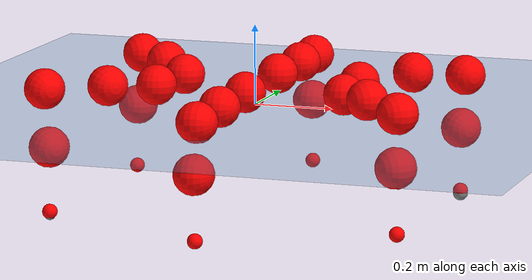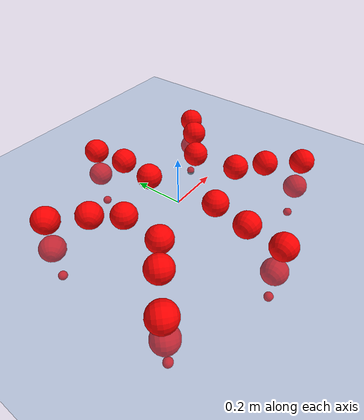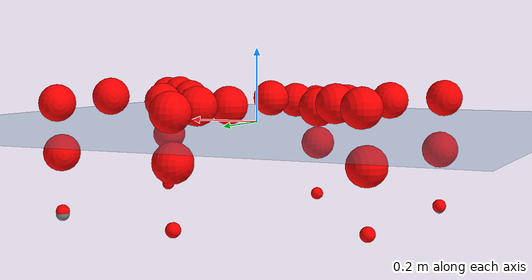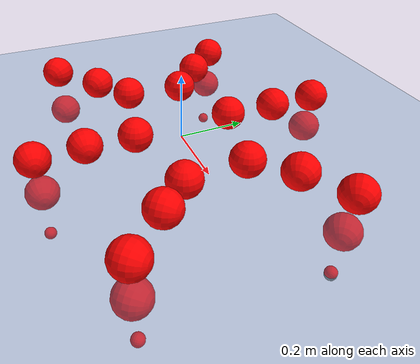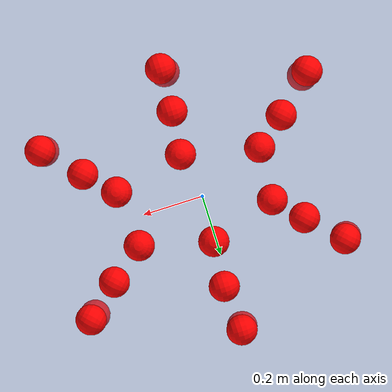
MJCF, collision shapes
<mujoco model="Golem">
  <compiler angle="radian" assetdir="assets" balanceinertia="true" inertiafromgeom="false"/>

  <option timestep="0.005" density="1.2" viscosity="2e-05"/>

  <size nkey="1"/>

  <visual>
    <quality shadowsize="8192"/>
    <map shadowclip="0.5"/>
  </visual>

  <default>
    <default class="/">
      <joint armature="0.01" damping="0.01" frictionloss="0.01"/>
      <geom contype="0" conaffinity="0" group="1" solref="-1000 -80"/>
      <site size="0.01 0.005 0.005" group="5"/>
      <general forcelimited="true" biastype="affine" gainprm="25" biasprm="0 -25 -0.5"/>
      <default class="visual">
        <geom type="mesh" group="2"/>
      </default>
      <default class="collision">
        <geom group="3"/>
      </default>
      <default class="foot">
        <geom size="0.01 0 0" condim="6" group="4" priority="1" solimp="0.015 1 0.01"/>
      </default>
      <default class="reward_collision_sphere">
        <geom group="5" rgba="1 0 0 1"/>
      </default>
    </default>
  </default>

  <asset>
    <texture type="skybox" colorspace="auto" name="//unnamed_texture_0" builtin="gradient" rgb1="0.95 0.95 0.95" rgb2="0.95 0.95 0.95" width="100" height="600"/>
    <texture type="2d" colorspace="auto" name="texplane" builtin="checker" rgb1="0.345 0.575 0.748" rgb2="0.345 0.575 0.748" markrgb="1 1 1" width="512" height="512"/>
    <material name="MatPlane" class="/" texture="texplane" texuniform="true" texrepeat="2 2" specular="0.9"/>
    <mesh name="body" class="/" file="body.stl" scale="0.001 0.001 0.001"/>
    <mesh name="coxa" class="/" file="coxa.stl" scale="0.001 0.001 0.001"/>
    <mesh name="femur" class="/" file="femur.stl" scale="0.001 0.001 0.001"/>
    <mesh name="tibia" class="/" file="tibia.stl" scale="0.001 0.001 0.001"/>
    <mesh name="tarsus" class="/" file="tarsus.stl" scale="0.001 0.001 0.001"/>
  </asset>

  <worldbody>
    <geom name="floor" class="/" size="100 100 0.125" type="plane" group="0" material="MatPlane"/>
    <light name="toplight_shadow" class="/" pos="0 0 5" dir="0.0990148 0.0990148 -0.990148" type="directional" ambient="0.04 0.04 0.04" diffuse="0.55 0.55 0.55" specular="0.12 0.12 0.12"/>
    <light name="toplight_fill" class="/" pos="0 0 5" dir="0.0990148 0.0990148 -0.990148" type="directional" castshadow="false" ambient="0.04 0.04 0.04" diffuse="0.3 0.3 0.3" specular="0.08 0.08 0.08"/>
    <body name="trunk" pos="0.0121937 -0.000368829 -0.00210706" quat="0.99997 -0.00750491 -0.000381088 -0.00210484">
      <inertial pos="0.00491711 -0.0167773 -0.0154556" quat="0.998756 -0.0262281 0.041291 -0.00968937" mass="7.9841" diaginertia="0.0822123 0.0448641 0.00742237"/>
      <joint name="//unnamed_joint_0" type="free"/>
      <geom name="//unnamed_geom_1" class="/" pos="0 0 0.0591761" quat="1 0 0 0" type="mesh" rgba="0.9 0.9 0.9 1" mesh="body"/>
      <site name="imu" class="/" pos="0.198739 -0.0682891 0.139133" size="0.0126404"/>
      <camera name="track" class="/" pos="0 -2.74728 0" quat="0.707107 0.707107 0 0" mode="trackcom"/>
      <camera name="ego_camera" class="/" pos="0.194202 0 0.0924626" quat="-0.5 -0.5 0.5 0.5"/>
      <body name="coxa_RR" pos="-0.268323 -0.127942 0.0532562" quat="0.389192 0.000611608 0.000461518 -0.921156">
        <inertial pos="-0.0110485 -0.00846547 -0.00888691" quat="0.996387 -0.0403416 0.0393914 0.0635117" mass="0.262073" diaginertia="0.0602067 0.0361395 0.00596282"/>
        <joint name="coxa_joint_RR" class="/" pos="0 0 0" axis="-0.00045853 0.00192813 -0.999998" range="-3.15545 3.47645" armature="0.00217515" damping="0" frictionloss="0.0125287"/>
        <geom name="//unnamed_geom_2" class="/" type="mesh" rgba="0.2 0.2 0.2 1" mesh="coxa"/>
        <geom name="//unnamed_geom_3" class="reward_collision_sphere" size="0.0505617" pos="-0.0448159 0 0"/>
        <body name="femur_RR" pos="0.0802091 -0.0145136 0.00460448" quat="0.501049 -0.501181 0.495438 0.502304">
          <inertial pos="-0.0150414 -0.0083239 0.00112971" quat="0.99734 -0.0278536 -0.0410308 0.0534144" mass="0.421541" diaginertia="0.0764394 0.050483 0.00668612"/>
          <joint name="femur_joint_RR" class="/" pos="0 0 0" axis="-0.000914295 -0.00217834 -0.999997" range="-3.34494 3.35507" armature="0.0119113" damping="0.0798163" frictionloss="0.00741087"/>
          <geom name="//unnamed_geom_4" class="/" type="mesh" rgba="0.9 0.9 0.9 1" mesh="femur"/>
          <geom name="//unnamed_geom_5" class="reward_collision_sphere" size="0.0505617"/>
          <body name="tibia_RR" pos="-0.00217306 -0.164339 -0.0107779" quat="-0.00319589 0.999988 -0.00303465 -0.00206681">
            <inertial pos="0.0124522 -0.00305302 -0.00239888" quat="0.999112 0.0387074 0.000694984 -0.016601" mass="0.315333" diaginertia="0.0662029 0.05007 0.00563001"/>
            <joint name="tibia_joint_RR" class="/" pos="0 0 0" axis="0.0598642 0.0307657 0.997732" range="-2.97984 3.16225" armature="0.0135172" damping="0.0192002" frictionloss="0.0119459"/>
            <geom name="//unnamed_geom_6" class="/" type="mesh" rgba="0.2 0.2 0.2 1" mesh="tibia"/>
            <geom name="//unnamed_geom_7" class="reward_collision_sphere" size="0.0505617"/>
            <body name="tarsus_RR" pos="0.144816 -0.0116584 -0.00208019" quat="0.999986 0.00179511 0.00316295 -0.00381953">
              <inertial pos="0.0897775 0.00431822 0.00843955" quat="0.500211 0.498749 0.501496 0.49954" mass="0.32887" diaginertia="0.0638149 0.0408339 0.00533834"/>
              <joint name="tarsus_joint_RR" class="/" pos="0 0 0" axis="0.00755123 -0.0223424 0.999722" range="-3.15571 3.13201" armature="0.0104784" damping="0.0111139" frictionloss="0.0208966"/>
              <geom name="//unnamed_geom_8" class="/" type="mesh" rgba="0.9 0.9 0.9 1" mesh="tarsus"/>
              <geom name="foot_1" class="foot" size="0.0143836" pos="0.167313 0 0" quat="0 -0.707107 0 0.707107"/>
              <geom name="//unnamed_geom_10" class="reward_collision_sphere" size="0.0505617"/>
              <geom name="//unnamed_geom_11" class="reward_collision_sphere" size="0.0189607" pos="0.16059 0 0"/>
              <site name="foot_1" class="foot" pos="0.167313 0 0" quat="0 -0.707107 0 0.707107" size="0.0126404"/>
            </body>
          </body>
        </body>
      </body>
      <body name="coxa_RM" pos="0.0150403 -0.195646 0.0584906" quat="0.708632 -0.0028541 -0.000628183 -0.705572">
        <inertial pos="0.0146462 -0.00201512 0.00528496" quat="0.999984 -0.000103509 -0.000470026 0.00565239" mass="0.329037" diaginertia="0.0671536 0.035111 0.00538722"/>
        <joint name="coxa_joint_RM" class="/" pos="0 0 0" axis="0.000964669 0.00127138 -0.999999" range="-3.39793 3.13801" armature="0.00444845" damping="0.000338823" frictionloss="0.0132568"/>
        <geom name="//unnamed_geom_12" class="/" type="mesh" rgba="0.2 0.2 0.2 1" mesh="coxa"/>
        <geom name="//unnamed_geom_13" class="reward_collision_sphere" size="0.0505617" pos="-0.0448159 0 0"/>
        <body name="femur_RM" pos="0.0970833 -0.0162424 -0.0143026" quat="0.500867 -0.498519 0.496974 0.503615">
          <inertial pos="-0.00336582 0.00996973 -0.00778784" quat="0.996702 -0.0219157 0.0330705 0.0707906" mass="0.435277" diaginertia="0.100247 0.057924 0.00876042"/>
          <joint name="femur_joint_RM" class="/" pos="0 0 0" axis="-0.00232165 -0.00757958 -0.999969" range="-2.80865 3.26367" armature="0.0115796" damping="0" frictionloss="0.012712"/>
          <geom name="//unnamed_geom_14" class="/" type="mesh" rgba="0.9 0.9 0.9 1" mesh="femur"/>
          <geom name="//unnamed_geom_15" class="reward_collision_sphere" size="0.0505617"/>
          <body name="tibia_RM" pos="0.0142125 -0.143317 -0.00657473" quat="-0.000655672 0.999965 0.00392659 0.00737354">
            <inertial pos="0.0118439 0.000322422 0.00603274" quat="0.998007 0.0310305 -0.0370122 -0.0406" mass="0.398597" diaginertia="0.0788144 0.0601244 0.00848617"/>
            <joint name="tibia_joint_RM" class="/" pos="0 0 0" axis="0.0306523 -0.0111085 0.999468" stiffness="0.0748043" range="-3.12514 3.14726" armature="0.0150957" damping="0.0612861" frictionloss="0.0164627"/>
            <geom name="//unnamed_geom_16" class="/" type="mesh" rgba="0.2 0.2 0.2 1" mesh="tibia"/>
            <geom name="//unnamed_geom_17" class="reward_collision_sphere" size="0.0505617"/>
            <body name="tarsus_RM" pos="0.127618 -0.00705524 0.0127059" quat="0.999973 0.0041447 -0.000223777 0.00606076">
              <inertial pos="0.0889892 -0.00437845 -1.74385e-06" quat="0.498869 0.498971 0.52628 0.474539" mass="0.407689" diaginertia="0.0723156 0.0494187 0.00528069"/>
              <joint name="tarsus_joint_RM" class="/" pos="0 0 0" axis="-0.00615583 -0.0692376 0.997581" range="-2.90399 2.80488" armature="0.0195394" damping="0.00884756" frictionloss="0.0231916"/>
              <geom name="//unnamed_geom_18" class="/" type="mesh" rgba="0.9 0.9 0.9 1" mesh="tarsus"/>
              <geom name="foot_2" class="foot" size="0.00952748" pos="0.167313 0 0" quat="0 -0.707107 0 0.707107"/>
              <geom name="//unnamed_geom_20" class="reward_collision_sphere" size="0.0505617"/>
              <geom name="//unnamed_geom_21" class="reward_collision_sphere" size="0.0189607" pos="0.16059 0 0"/>
              <site name="foot_2" class="foot" pos="0.167313 0 0" quat="0 -0.707107 0 0.707107" size="0.0126404"/>
            </body>
          </body>
        </body>
      </body>
      <body name="coxa_RF" pos="0.280611 -0.127493 0.0576688" quat="0.924257 0.00658823 -0.0029311 -0.381703">
        <inertial pos="-0.0149887 -0.0152873 -0.00131193" quat="0.999971 -0.00544031 -0.00531718 0.000195253" mass="0.382911" diaginertia="0.079758 0.0557284 0.00668934"/>
        <joint name="coxa_joint_RF" class="/" pos="0 0 0" axis="-0.04211 -0.00592542 -0.999095" stiffness="0.082753" range="-3.32027 3.44613" armature="0.017928" damping="0" frictionloss="0.0103116"/>
        <geom name="//unnamed_geom_22" class="/" type="mesh" rgba="0.2 0.2 0.2 1" mesh="coxa"/>
        <geom name="//unnamed_geom_23" class="reward_collision_sphere" size="0.0505617" pos="-0.0448159 0 0"/>
        <body name="femur_RF" pos="0.078385 -0.000898593 0.00669535" quat="0.495364 -0.497909 0.502159 0.504517">
          <inertial pos="0.000712904 0.0103354 -0.0162023" quat="0.997596 -0.011859 -0.0663657 -0.016009" mass="0.417672" diaginertia="0.0885987 0.0590958 0.00966309"/>
          <joint name="femur_joint_RF" class="/" pos="0 0 0" axis="0.0499644 -0.0656339 -0.996592" range="-3.07646 3.34236" armature="0.00128562" damping="0.000888714" frictionloss="0.00465702"/>
          <geom name="//unnamed_geom_24" class="/" type="mesh" rgba="0.9 0.9 0.9 1" mesh="femur"/>
          <geom name="//unnamed_geom_25" class="reward_collision_sphere" size="0.0505617"/>
          <body name="tibia_RF" pos="0.00553683 -0.157746 -0.00373108" quat="-0.00327635 0.999988 -0.00147861 0.0032575">
            <inertial pos="-0.000635823 0.000548299 0.000999572" quat="0.997906 -0.0611322 0.00316992 -0.0208762" mass="0.498257" diaginertia="0.0817259 0.0560968 0.00618429"/>
            <joint name="tibia_joint_RF" class="/" pos="0 0 0" axis="-0.0163178 0.0190905 0.999685" stiffness="0.0527759" range="-3.15659 2.8328" armature="0.0100615" damping="0.0132736" frictionloss="0.00798312"/>
            <geom name="//unnamed_geom_26" class="/" type="mesh" rgba="0.2 0.2 0.2 1" mesh="tibia"/>
            <geom name="//unnamed_geom_27" class="reward_collision_sphere" size="0.0505617"/>
            <body name="tarsus_RF" pos="0.130975 -0.00159744 0.00430541" quat="0.999966 0.00376021 0.00698104 0.00205532">
              <inertial pos="0.0963347 -0.000412805 -0.000321504" quat="0.477235 0.538172 0.512784 0.46869" mass="0.462002" diaginertia="0.0840941 0.0570933 0.00904976"/>
              <joint name="tarsus_joint_RF" class="/" pos="0 0 0" axis="-0.0327502 0.00907384 0.999422" range="-3.15255 3.18475" armature="0.0132089" damping="0" frictionloss="0.00584901"/>
              <geom name="//unnamed_geom_28" class="/" type="mesh" rgba="0.9 0.9 0.9 1" mesh="tarsus"/>
              <geom name="foot_3" class="foot" size="0.00587426" pos="0.167313 0 0" quat="0 -0.707107 0 0.707107"/>
              <geom name="//unnamed_geom_30" class="reward_collision_sphere" size="0.0505617"/>
              <geom name="//unnamed_geom_31" class="reward_collision_sphere" size="0.0189607" pos="0.16059 0 0"/>
              <site name="foot_3" class="foot" pos="0.167313 0 0" quat="0 -0.707107 0 0.707107" size="0.0126404"/>
            </body>
          </body>
        </body>
      </body>
      <body name="coxa_LR" pos="-0.25706 0.109717 0.053982" quat="0.385754 0.00546623 0.00314649 0.92258">
        <inertial pos="5.64858e-05 0.00166145 -0.00709445" quat="0.999981 0.00151109 0.005908 -0.000617365" mass="0.441548" diaginertia="0.0858798 0.0457064 0.00801771"/>
        <joint name="coxa_joint_LR" class="/" pos="0 0 0" axis="-0.0383558 0.0592953 -0.997503" stiffness="0.0412561" range="-3.40941 3.14735" armature="0.0179098" damping="0" frictionloss="0.0120907"/>
        <geom name="//unnamed_geom_32" class="/" type="mesh" rgba="0.2 0.2 0.2 1" mesh="coxa"/>
        <geom name="//unnamed_geom_33" class="reward_collision_sphere" size="0.0505617" pos="-0.0448159 0 0"/>
        <body name="femur_LR" pos="0.0737206 -0.00237851 0.0148946" quat="0.501666 -0.501566 0.496749 0.500003">
          <inertial pos="-0.000404927 0.00392694 -0.00936929" quat="0.999143 -0.00514806 0.0224149 -0.0344153" mass="0.364383" diaginertia="0.0653403 0.0548016 0.00583319"/>
          <joint name="femur_joint_LR" class="/" pos="0 0 0" axis="0.0102377 0.0202283 0.999743" stiffness="0.0585167" range="-2.84569 2.84961" armature="0.0119026" damping="0.0819546" frictionloss="0.0168813"/>
          <geom name="//unnamed_geom_34" class="/" type="mesh" rgba="0.9 0.9 0.9 1" mesh="femur"/>
          <geom name="//unnamed_geom_35" class="reward_collision_sphere" size="0.0505617"/>
          <body name="tibia_LR" pos="0.00295021 -0.148847 0.00134625" quat="0.00150178 0.999995 0.00278865 0.00057994">
            <inertial pos="0.0166188 0.0068734 0.0152202" quat="0.999788 -0.0143001 0.0123179 -0.00828766" mass="0.402137" diaginertia="0.0773465 0.042369 0.00811032"/>
            <joint name="tibia_joint_LR" class="/" pos="0 0 0" axis="-0.000331835 -0.000367135 -1" stiffness="0.0539203" range="-3.44322 2.88231" armature="0.0190733" damping="0" frictionloss="0.0174808"/>
            <geom name="//unnamed_geom_36" class="/" type="mesh" rgba="0.2 0.2 0.2 1" mesh="tibia"/>
            <geom name="//unnamed_geom_37" class="reward_collision_sphere" size="0.0505617"/>
            <body name="tarsus_LR" pos="0.136485 0.00919795 -0.00663523" quat="1 -0.000220246 -7.31611e-05 2.28591e-05">
              <inertial pos="0.0848036 0.000573084 -0.00656085" quat="0.496184 0.49456 0.50127 0.507879" mass="0.36754" diaginertia="0.0685713 0.0342878 0.00547164"/>
              <joint name="tarsus_joint_LR" class="/" pos="0 0 0" axis="0.0685647 0.0353079 -0.997022" range="-3.05387 3.3945" armature="0.0160152" damping="0.038664" frictionloss="0.00461791"/>
              <geom name="//unnamed_geom_38" class="/" type="mesh" rgba="0.9 0.9 0.9 1" mesh="tarsus"/>
              <geom name="foot_4" class="foot" size="0.00938999" pos="0.167313 0 0" quat="0.707107 0 -0.707107 0"/>
              <geom name="//unnamed_geom_40" class="reward_collision_sphere" size="0.0505617"/>
              <geom name="//unnamed_geom_41" class="reward_collision_sphere" size="0.0189607" pos="0.16059 0 0"/>
              <site name="foot_4" class="foot" pos="0.167313 0 0" quat="0.707107 0 -0.707107 0" size="0.0126404"/>
            </body>
          </body>
        </body>
      </body>
      <body name="coxa_LM" pos="-0.00434634 0.195659 0.0566678" quat="0.706256 -0.00413973 0.000942279 0.707944">
        <inertial pos="-0.0151394 -0.01634 -0.00714543" quat="0.999999 -0.00101114 -0.000754893 -0.000499673" mass="0.402638" diaginertia="0.067732 0.0484665 0.00666508"/>
        <joint name="coxa_joint_LM" class="/" pos="0 0 0" axis="0.0263734 0.0067879 -0.999629" stiffness="0.0632904" range="-3.3552 3.35598" armature="0.00338172" damping="0.0214367" frictionloss="0.00598732"/>
        <geom name="//unnamed_geom_42" class="/" type="mesh" rgba="0.2 0.2 0.2 1" mesh="coxa"/>
        <geom name="//unnamed_geom_43" class="reward_collision_sphere" size="0.0505617" pos="-0.0448159 0 0"/>
        <body name="femur_LM" pos="0.103435 -0.0114572 0.00835065" quat="0.494644 -0.502153 0.505159 0.497979">
          <inertial pos="0.0114609 -0.0104612 0.0046077" quat="0.997943 -0.0118279 -0.00657758 -0.0626692" mass="0.374215" diaginertia="0.0577172 0.0516775 0.00578002"/>
          <joint name="femur_joint_LM" class="/" pos="0 0 0" axis="0.00846882 -0.0327071 0.999429" range="-3.30266 3.12395" armature="0.0227358" damping="0.0236835" frictionloss="0.0109812"/>
          <geom name="//unnamed_geom_44" class="/" type="mesh" rgba="0.9 0.9 0.9 1" mesh="femur"/>
          <geom name="//unnamed_geom_45" class="reward_collision_sphere" size="0.0505617"/>
          <body name="tibia_LM" pos="0.00170093 -0.15215 0.012249" quat="-0.00110957 0.999999 -0.000257548 -0.000367246">
            <inertial pos="-0.0070391 -0.0143844 -0.00931111" quat="0.999314 0.00666288 0.00863105 0.0353852" mass="0.421483" diaginertia="0.0863782 0.0459934 0.00614344"/>
            <joint name="tibia_joint_LM" class="/" pos="0 0 0" axis="-0.0375077 -0.0391417 -0.998529" stiffness="0.0319733" range="-2.98868 2.89397" armature="0.0115705" damping="0.04288" frictionloss="0.0194557"/>
            <geom name="//unnamed_geom_46" class="/" type="mesh" rgba="0.2 0.2 0.2 1" mesh="tibia"/>
            <geom name="//unnamed_geom_47" class="reward_collision_sphere" size="0.0505617"/>
            <body name="tarsus_LM" pos="0.119279 0.000722841 -0.00702947" quat="1 4.04961e-06 7.96491e-06 -1.34224e-05">
              <inertial pos="0.0942435 0.000527448 -0.000458827" quat="0.469131 0.487426 0.504468 0.536511" mass="0.263068" diaginertia="0.0539533 0.0383936 0.0065168"/>
              <joint name="tarsus_joint_LM" class="/" pos="0 0 0" axis="-0.0257211 0.0349948 -0.999056" range="-3.13154 3.3735" armature="0.0128105" damping="0" frictionloss="0.012843"/>
              <geom name="//unnamed_geom_48" class="/" type="mesh" rgba="0.9 0.9 0.9 1" mesh="tarsus"/>
              <geom name="foot_5" class="foot" size="0.00919977" pos="0.167313 0 0" quat="0.707107 0 -0.707107 0"/>
              <geom name="//unnamed_geom_50" class="reward_collision_sphere" size="0.0505617"/>
              <geom name="//unnamed_geom_51" class="reward_collision_sphere" size="0.0189607" pos="0.16059 0 0"/>
              <site name="foot_5" class="foot" pos="0.167313 0 0" quat="0.707107 0 -0.707107 0" size="0.0126404"/>
            </body>
          </body>
        </body>
      </body>
      <body name="coxa_LF" pos="0.262053 0.123027 0.0579995" quat="0.923842 -0.000156344 0.00030644 0.382773">
        <inertial pos="0.000846016 -0.00604564 0.000670751" quat="0.999998 -0.000722032 1.90492e-05 0.00173062" mass="0.501297" diaginertia="0.0906261 0.0518121 0.00718166"/>
        <joint name="coxa_joint_LF" class="/" pos="0 0 0" axis="-0.0756035 0.0166803 -0.996998" range="-3.19677 3.31816" armature="0.00760813" damping="0.0236508" frictionloss="0.0120833"/>
        <geom name="//unnamed_geom_52" class="/" type="mesh" rgba="0.2 0.2 0.2 1" mesh="coxa"/>
        <geom name="//unnamed_geom_53" class="reward_collision_sphere" size="0.0505617" pos="-0.0448159 0 0"/>
        <body name="femur_LF" pos="0.0964142 -0.0164645 0.0169813" quat="0.501902 -0.499271 0.500714 0.498105">
          <inertial pos="0.0139064 -0.00895187 0.00632524" quat="0.99997 -0.00529859 0.00451045 -0.00328746" mass="0.384921" diaginertia="0.089341 0.0640983 0.00741299"/>
          <joint name="femur_joint_LF" class="/" pos="0 0 0" axis="0.0360348 -0.0577667 0.99768" range="-3.12466 3.43478" armature="0.020968" damping="0.00526826" frictionloss="0.00923499"/>
          <geom name="//unnamed_geom_54" class="/" type="mesh" rgba="0.9 0.9 0.9 1" mesh="femur"/>
          <geom name="//unnamed_geom_55" class="reward_collision_sphere" size="0.0505617"/>
          <body name="tibia_LF" pos="0.0152154 -0.144042 -0.00913302" quat="0.000142841 0.999995 -0.00134075 -0.00290302">
            <inertial pos="-0.00696697 -0.00927614 -0.00407022" quat="0.997224 0.0730012 -0.0145198 -0.00225404" mass="0.413108" diaginertia="0.074369 0.043451 0.00615338"/>
            <joint name="tibia_joint_LF" class="/" pos="0 0 0" axis="0.00190524 -0.0017619 -0.999997" stiffness="0.0096388" range="-3.16104 3.33839" armature="0.0234205" damping="0.00949912" frictionloss="0.0122182"/>
            <geom name="//unnamed_geom_56" class="/" type="mesh" rgba="0.2 0.2 0.2 1" mesh="tibia"/>
            <geom name="//unnamed_geom_57" class="reward_collision_sphere" size="0.0505617"/>
            <body name="tarsus_LF" pos="0.134353 -0.00941711 -0.00379353" quat="0.999965 0.0042043 0.00663538 0.00282584">
              <inertial pos="0.0768172 0.0144239 -0.00242737" quat="0.501241 0.500149 0.5065 0.492003" mass="0.455058" diaginertia="0.0933555 0.0570622 0.00829801"/>
              <joint name="tarsus_joint_LF" class="/" pos="0 0 0" axis="0.0708896 -0.0107106 -0.997427" range="-3.41964 3.07058" armature="0.00998168" damping="0" frictionloss="0.0134525"/>
              <geom name="//unnamed_geom_58" class="/" type="mesh" rgba="0.9 0.9 0.9 1" mesh="tarsus"/>
              <geom name="foot_6" class="foot" size="0.0187603" pos="0.167313 0 0" quat="0.707107 0 -0.707107 0"/>
              <geom name="//unnamed_geom_60" class="reward_collision_sphere" size="0.0505617"/>
              <geom name="//unnamed_geom_61" class="reward_collision_sphere" size="0.0189607" pos="0.16059 0 0"/>
              <site name="foot_6" class="foot" pos="0.167313 0 0" quat="0.707107 0 -0.707107 0" size="0.0126404"/>
            </body>
          </body>
        </body>
      </body>
    </body>
  </worldbody>

  <contact>
    <pair class="/" geom1="floor" geom2="foot_1" name="//unnamed_contact_0"/>
    <pair class="/" geom1="floor" geom2="foot_2" name="//unnamed_contact_1"/>
    <pair class="/" geom1="floor" geom2="foot_3" name="//unnamed_contact_2"/>
    <pair class="/" geom1="floor" geom2="foot_4" name="//unnamed_contact_3"/>
    <pair class="/" geom1="floor" geom2="foot_5" name="//unnamed_contact_4"/>
    <pair class="/" geom1="floor" geom2="foot_6" name="//unnamed_contact_5"/>
  </contact>

  <actuator>
    <general name="coxa_joint_RR" class="/" joint="coxa_joint_RR" forcerange="-8.16326 8.16326" gainprm="22.7447" biasprm="0 -22.7447 -0.780484"/>
    <general name="femur_joint_RR" class="/" joint="femur_joint_RR" forcerange="-8.98552 8.98552" gainprm="22.7447" biasprm="0 -22.7447 -0.780484"/>
    <general name="tibia_joint_RR" class="/" joint="tibia_joint_RR" forcerange="-8.58999 8.58999" gainprm="22.7447" biasprm="0 -22.7447 -0.780484"/>
    <general name="tarsus_joint_RR" class="/" joint="tarsus_joint_RR" forcerange="-11.3951 11.3951" gainprm="22.7447" biasprm="0 -22.7447 -0.780484"/>
    <general name="coxa_joint_RM" class="/" joint="coxa_joint_RM" forcerange="-11.5604 11.5604" gainprm="22.7447" biasprm="0 -22.7447 -0.780484"/>
    <general name="femur_joint_RM" class="/" joint="femur_joint_RM" forcerange="-13.6827 13.6827" gainprm="22.7447" biasprm="0 -22.7447 -0.780484"/>
    <general name="tibia_joint_RM" class="/" joint="tibia_joint_RM" forcerange="-9.54457 9.54457" gainprm="22.7447" biasprm="0 -22.7447 -0.780484"/>
    <general name="tarsus_joint_RM" class="/" joint="tarsus_joint_RM" forcerange="-6.64028 6.64028" gainprm="22.7447" biasprm="0 -22.7447 -0.780484"/>
    <general name="coxa_joint_RF" class="/" joint="coxa_joint_RF" forcerange="-13.8831 13.8831" gainprm="22.7447" biasprm="0 -22.7447 -0.780484"/>
    <general name="femur_joint_RF" class="/" joint="femur_joint_RF" forcerange="-13.5117 13.5117" gainprm="22.7447" biasprm="0 -22.7447 -0.780484"/>
    <general name="tibia_joint_RF" class="/" joint="tibia_joint_RF" forcerange="-5.09689 5.09689" gainprm="22.7447" biasprm="0 -22.7447 -0.780484"/>
    <general name="tarsus_joint_RF" class="/" joint="tarsus_joint_RF" forcerange="-6.26681 6.26681" gainprm="22.7447" biasprm="0 -22.7447 -0.780484"/>
    <general name="coxa_joint_LR" class="/" joint="coxa_joint_LR" forcerange="-10.4162 10.4162" gainprm="22.7447" biasprm="0 -22.7447 -0.780484"/>
    <general name="femur_joint_LR" class="/" joint="femur_joint_LR" forcerange="-12.6334 12.6334" gainprm="22.7447" biasprm="0 -22.7447 -0.780484"/>
    <general name="tibia_joint_LR" class="/" joint="tibia_joint_LR" forcerange="-14.5613 14.5613" gainprm="22.7447" biasprm="0 -22.7447 -0.780484"/>
    <general name="tarsus_joint_LR" class="/" joint="tarsus_joint_LR" forcerange="-3.63522 3.63522" gainprm="22.7447" biasprm="0 -22.7447 -0.780484"/>
    <general name="coxa_joint_LM" class="/" joint="coxa_joint_LM" forcerange="-5.95953 5.95953" gainprm="22.7447" biasprm="0 -22.7447 -0.780484"/>
    <general name="femur_joint_LM" class="/" joint="femur_joint_LM" forcerange="-9.15661 9.15661" gainprm="22.7447" biasprm="0 -22.7447 -0.780484"/>
    <general name="tibia_joint_LM" class="/" joint="tibia_joint_LM" forcerange="-9.00439 9.00439" gainprm="22.7447" biasprm="0 -22.7447 -0.780484"/>
    <general name="tarsus_joint_LM" class="/" joint="tarsus_joint_LM" forcerange="-12.0479 12.0479" gainprm="22.7447" biasprm="0 -22.7447 -0.780484"/>
    <general name="coxa_joint_LF" class="/" joint="coxa_joint_LF" forcerange="-9.06058 9.06058" gainprm="22.7447" biasprm="0 -22.7447 -0.780484"/>
    <general name="femur_joint_LF" class="/" joint="femur_joint_LF" forcerange="-9.06248 9.06248" gainprm="22.7447" biasprm="0 -22.7447 -0.780484"/>
    <general name="tibia_joint_LF" class="/" joint="tibia_joint_LF" forcerange="-6.65151 6.65151" gainprm="22.7447" biasprm="0 -22.7447 -0.780484"/>
    <general name="tarsus_joint_LF" class="/" joint="tarsus_joint_LF" forcerange="-10.2796 10.2796" gainprm="22.7447" biasprm="0 -22.7447 -0.780484"/>
  </actuator>

  <sensor>
    <gyro site="imu" name="imu_angular_velocity"/>
    <velocimeter site="imu" name="imu_linear_velocity"/>
    <framelinvel objtype="site" objname="foot_1" name="foot_1_global_linear_velocity"/>
    <framelinvel objtype="site" objname="foot_2" name="foot_2_global_linear_velocity"/>
    <framelinvel objtype="site" objname="foot_3" name="foot_3_global_linear_velocity"/>
    <framelinvel objtype="site" objname="foot_4" name="foot_4_global_linear_velocity"/>
    <framelinvel objtype="site" objname="foot_5" name="foot_5_global_linear_velocity"/>
    <framelinvel objtype="site" objname="foot_6" name="foot_6_global_linear_velocity"/>
  </sensor>

  <keyframe>
    <key name="home" qpos="0 0 0.1457 1 0 0 0 0 0 0 0 0 0 0 0 0 0 0 0 0 0 0 0 0 0 0 0 0 0 0 0"/>
  </keyframe>
</mujoco>
